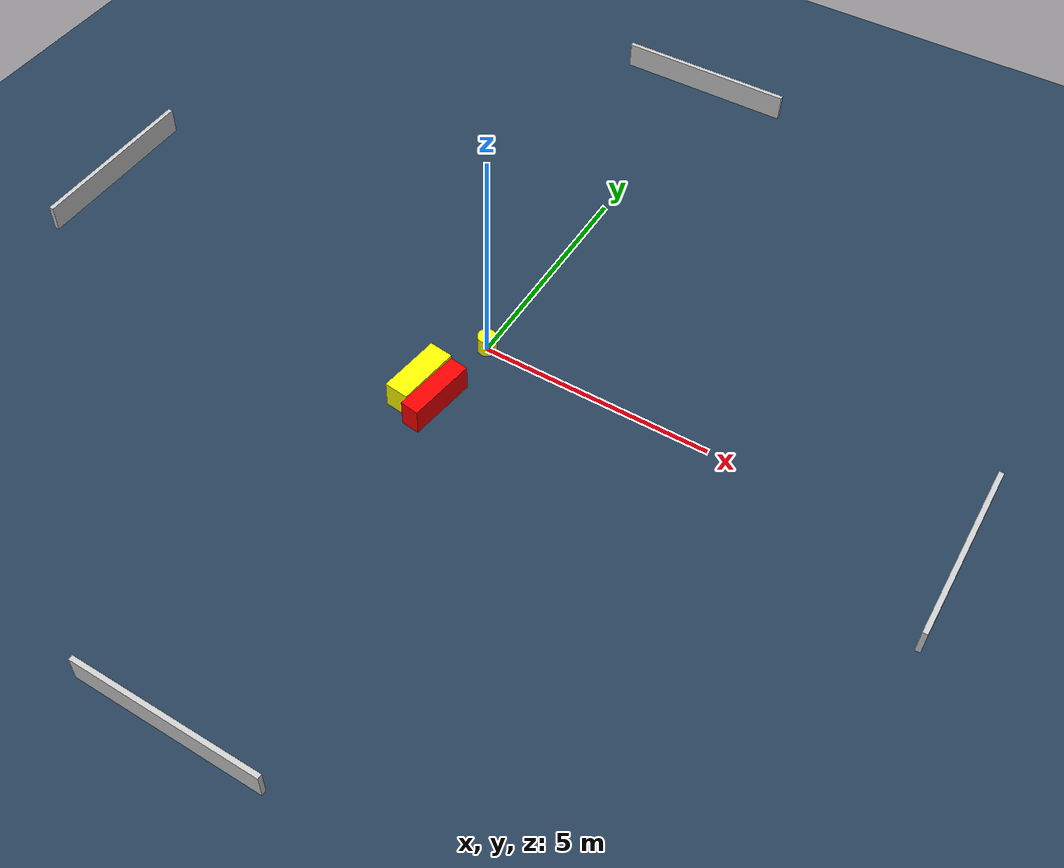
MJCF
<?xml version="1.0" ?>
<mujoco model="generated_environment">
  <option timestep="0.01" integrator="RK4" cone="elliptic"/>
  <default>
    <geom density="1"/>
  </default>
  <asset>
    <texture builtin="gradient" height="3072" name="skybox" rgb1="0.3 0.5 0.7" rgb2="0 0 0" type="skybox" width="512"/>
    <texture builtin="checker" height="300" name="groundplane" rgb1="0.2 0.3 0.4" rgb2="0.1 0.2 0.3" type="2d" width="300"/>
    <material name="groundplane" reflectance="0.2" texrepeat="5 5" texture="groundplane"/>
  </asset>
  <worldbody>
    <light dir="0 0 -1" directional="true" pos="0 0 1.5"/>
    <geom condim="3" friction="0.5 0.005 0.001" material="groundplane" name="floor" pos="0 0 0" size="0 0 0.05" type="plane"/>
    <body name="walls">
      <geom name="wall_1" condim="4" pos="-10.0 0.0 0.3" rgba="0.800000011920929 0.800000011920929 0.800000011920929 1.0" size="0.05 2.0 0.3" type="box"/>
      <geom name="wall_2" condim="4" pos="10.0 0.0 0.3" rgba="0.800000011920929 0.800000011920929 0.800000011920929 1.0" size="0.05 2.0 0.3" type="box"/>
      <geom name="wall_3" condim="4" pos="0.0 -10.0 0.3" rgba="0.800000011920929 0.800000011920929 0.800000011920929 1.0" size="2.0 0.05 0.3" type="box"/>
      <geom name="wall_4" condim="4" pos="0.0 10.0 0.3" rgba="0.800000011920929 0.800000011920929 0.800000011920929 1.0" size="2.0 0.05 0.3" type="box"/>
    </body>
    <body name="robot">
      <joint name="joint_x" type="slide" pos="0 0 0" axis="1 0 0"/>
      <joint name="joint_y" type="slide" pos="0 0 0" axis="0 1 0"/>
      <geom name="robot" type="cylinder" pos="0.0 0.0 0.2" size="0.2 0.2 0.0" mass="5.0" friction="1.0 0.005 0.0001" condim="4" rgba="1.0 1.0 0.0 1.0"/>
    </body>
    <body name="obstacle_1_movable">
      <geom name="obstacle_1_movable" condim="4" pos="-0.574062250246165 -1.6203266462803625 0.3" euler="0 0 353.13101296974435" friction="0.0 0.005 0.001" rgba="1.0 1.0 0.0 1.0" size="0.26295642199894553 0.6903841292171216 0.3" type="box" mass="0.1"/>
      <joint type="free"/>
    </body>
    <body name="obstacle_2_static">
      <geom name="obstacle_2_static" condim="4" pos="-0.09649996329472373 -1.7964546981347962 0.3" euler="0 0 82.29649674048403" friction="0.0 0.005 0.001" rgba="1.0 0.0 0.0 1.0" size="0.7438979313490341 0.20300731104146272 0.3" type="box"/>
    </body>
  </worldbody>
  <actuator>
    <motor name="actuator_x" joint="joint_x" gear="1" ctrlrange="-1 1"/>
    <motor name="actuator_y" joint="joint_y" gear="1" ctrlrange="-1 1"/>
  </actuator>
</mujoco>
